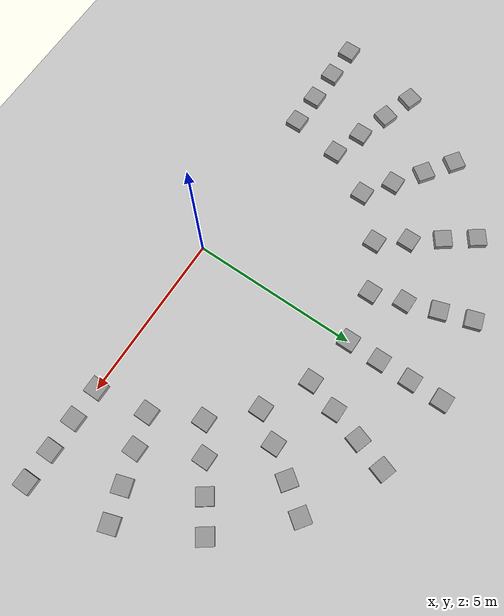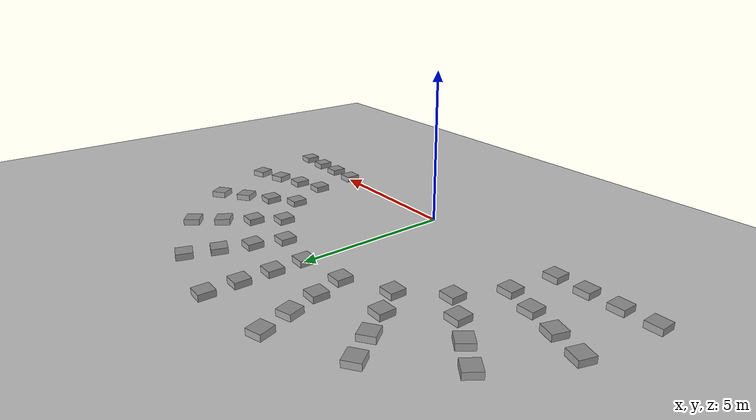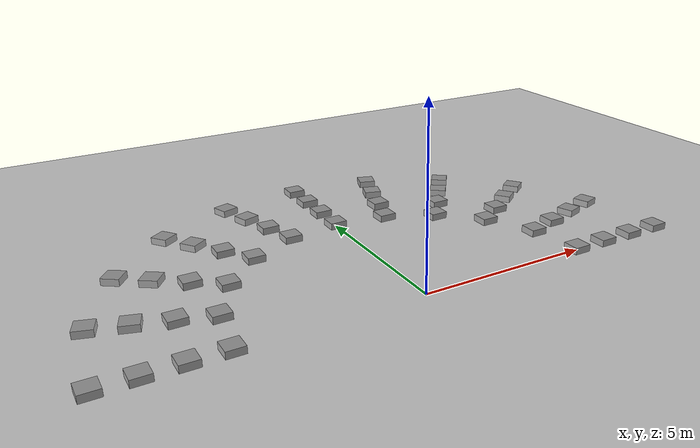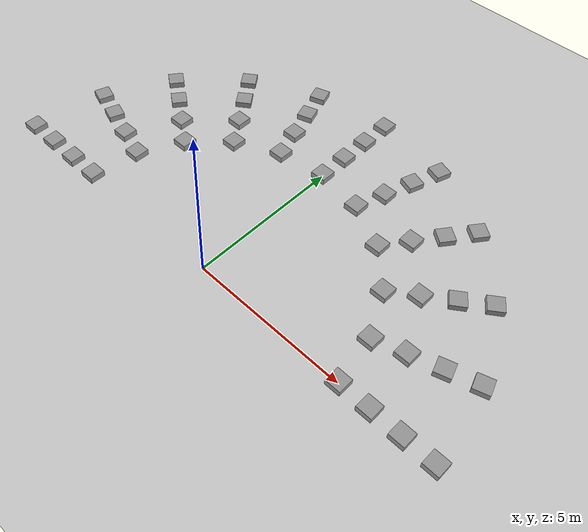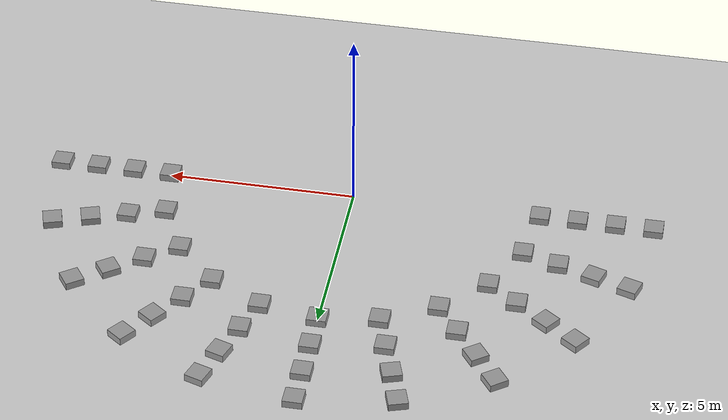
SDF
<sdf version="1.6">
 <world name="default">
  <model name="ground_plane">
   <static>1</static>
   <link name="link">
    <collision name="collision">
     <geometry><plane><normal>0 0 1</normal><size>100 100</size></plane></geometry>
     <surface><friction><ode><mu>100</mu><mu2>50</mu2></ode></friction></surface>
    </collision>
    <visual name="visual">
     <cast_shadows>0</cast_shadows>
     <geometry><plane><normal>0 0 1</normal><size>100 100</size></plane></geometry>
     <material>
      <script><uri>file://media/materials/scripts/gazebo.material</uri><name>Gazebo/Grey</name></script>
     </material>
    </visual>
   </link>
  </model>
  <model name="box_model0">
   <pose>5 0 0.1 0 -0 0</pose>
   <link name="link_1">
    <inertial>
     <mass>1</mass>
     <inertia>
      <ixx>0.0241667</ixx>
      <ixy>0</ixy>
      <ixz>0</ixz>
      <iyy>0.0241667</iyy>
      <iyz>0</iyz>
      <izz>0.0416667</izz>
     </inertia>
    </inertial>
    <collision name="collision">
     <geometry><box><size>0.5 0.5 0.2</size></box></geometry>
     <surface>
      <friction><ode><mu>100</mu><mu2>0</mu2><fdir1>-0 1 0</fdir1></ode></friction>
      <contact>
       <bullet>
        <split_impulse>1</split_impulse>
        <split_impulse_penetration_threshold>-0.01</split_impulse_penetration_threshold>
       </bullet>
      </contact>
     </surface>
    </collision>
    <visual name="visual">
     <geometry><box><size>0.5 0.5 0.2</size></box></geometry>
     <material>
      <script><name>Gazebo/Grey</name><uri>file://media/materials/scripts/gazebo.material</uri></script>
     </material>
    </visual>
   </link>
  </model>
  <model name="box_model1">
   <pose>4.75528 1.54509 0.1 0 -0 0</pose>
   <link name="link_1">
    <inertial>
     <mass>1</mass>
     <inertia>
      <ixx>0.0241667</ixx>
      <ixy>0</ixy>
      <ixz>0</ixz>
      <iyy>0.0241667</iyy>
      <iyz>0</iyz>
      <izz>0.0416667</izz>
     </inertia>
    </inertial>
    <collision name="collision">
     <geometry><box><size>0.5 0.5 0.2</size></box></geometry>
     <surface>
      <friction><ode><mu>100</mu><mu2>0</mu2><fdir1>-0.309017 0.951057 0</fdir1></ode></friction>
      <contact>
       <bullet>
        <split_impulse>1</split_impulse>
        <split_impulse_penetration_threshold>-0.01</split_impulse_penetration_threshold>
       </bullet>
      </contact>
     </surface>
    </collision>
    <visual name="visual">
     <geometry><box><size>0.5 0.5 0.2</size></box></geometry>
     <material>
      <script><name>Gazebo/Grey</name><uri>file://media/materials/scripts/gazebo.material</uri></script>
     </material>
    </visual>
   </link>
  </model>
  <model name="box_model2">
   <pose>4.04509 2.93893 0.1 0 -0 0</pose>
   <link name="link_1">
    <inertial>
     <mass>1</mass>
     <inertia>
      <ixx>0.0241667</ixx>
      <ixy>0</ixy>
      <ixz>0</ixz>
      <iyy>0.0241667</iyy>
      <iyz>0</iyz>
      <izz>0.0416667</izz>
     </inertia>
    </inertial>
    <collision name="collision">
     <geometry><box><size>0.5 0.5 0.2</size></box></geometry>
     <surface>
      <friction><ode><mu>100</mu><mu2>0</mu2><fdir1>-0.587785 0.809017 0</fdir1></ode></friction>
      <contact>
       <bullet>
        <split_impulse>1</split_impulse>
        <split_impulse_penetration_threshold>-0.01</split_impulse_penetration_threshold>
       </bullet>
      </contact>
     </surface>
    </collision>
    <visual name="visual">
     <geometry><box><size>0.5 0.5 0.2</size></box></geometry>
     <material>
      <script><name>Gazebo/Grey</name><uri>file://media/materials/scripts/gazebo.material</uri></script>
     </material>
    </visual>
   </link>
  </model>
  <model name="box_model3">
   <pose>2.93893 4.04509 0.1 0 -0 0</pose>
   <link name="link_1">
    <inertial>
     <mass>1</mass>
     <inertia>
      <ixx>0.0241667</ixx>
      <ixy>0</ixy>
      <ixz>0</ixz>
      <iyy>0.0241667</iyy>
      <iyz>0</iyz>
      <izz>0.0416667</izz>
     </inertia>
    </inertial>
    <collision name="collision">
     <geometry><box><size>0.5 0.5 0.2</size></box></geometry>
     <surface>
      <friction><ode><mu>100</mu><mu2>0</mu2><fdir1>-0.809017 0.587785 0</fdir1></ode></friction>
      <contact>
       <bullet>
        <split_impulse>1</split_impulse>
        <split_impulse_penetration_threshold>-0.01</split_impulse_penetration_threshold>
       </bullet>
      </contact>
     </surface>
    </collision>
    <visual name="visual">
     <geometry><box><size>0.5 0.5 0.2</size></box></geometry>
     <material>
      <script><name>Gazebo/Grey</name><uri>file://media/materials/scripts/gazebo.material</uri></script>
     </material>
    </visual>
   </link>
  </model>
  <model name="box_model4">
   <pose>1.54509 4.75528 0.1 0 -0 0</pose>
   <link name="link_1">
    <inertial>
     <mass>1</mass>
     <inertia>
      <ixx>0.0241667</ixx>
      <ixy>0</ixy>
      <ixz>0</ixz>
      <iyy>0.0241667</iyy>
      <iyz>0</iyz>
      <izz>0.0416667</izz>
     </inertia>
    </inertial>
    <collision name="collision">
     <geometry><box><size>0.5 0.5 0.2</size></box></geometry>
     <surface>
      <friction><ode><mu>100</mu><mu2>0</mu2><fdir1>-0.951057 0.309017 0</fdir1></ode></friction>
      <contact>
       <bullet>
        <split_impulse>1</split_impulse>
        <split_impulse_penetration_threshold>-0.01</split_impulse_penetration_threshold>
       </bullet>
      </contact>
     </surface>
    </collision>
    <visual name="visual">
     <geometry><box><size>0.5 0.5 0.2</size></box></geometry>
     <material>
      <script><name>Gazebo/Grey</name><uri>file://media/materials/scripts/gazebo.material</uri></script>
     </material>
    </visual>
   </link>
  </model>
  <model name="box_model5">
   <pose>0 5 0.1 0 -0 0</pose>
   <link name="link_1">
    <inertial>
     <mass>1</mass>
     <inertia>
      <ixx>0.0241667</ixx>
      <ixy>0</ixy>
      <ixz>0</ixz>
      <iyy>0.0241667</iyy>
      <iyz>0</iyz>
      <izz>0.0416667</izz>
     </inertia>
    </inertial>
    <collision name="collision">
     <geometry><box><size>0.5 0.5 0.2</size></box></geometry>
     <surface>
      <friction><ode><mu>100</mu><mu2>0</mu2><fdir1>-1 0 0</fdir1></ode></friction>
      <contact>
       <bullet>
        <split_impulse>1</split_impulse>
        <split_impulse_penetration_threshold>-0.01</split_impulse_penetration_threshold>
       </bullet>
      </contact>
     </surface>
    </collision>
    <visual name="visual">
     <geometry><box><size>0.5 0.5 0.2</size></box></geometry>
     <material>
      <script><name>Gazebo/Grey</name><uri>file://media/materials/scripts/gazebo.material</uri></script>
     </material>
    </visual>
   </link>
  </model>
  <model name="box_model6">
   <pose>-1.54509 4.75528 0.1 0 -0 0</pose>
   <link name="link_1">
    <inertial>
     <mass>1</mass>
     <inertia>
      <ixx>0.0241667</ixx>
      <ixy>0</ixy>
      <ixz>0</ixz>
      <iyy>0.0241667</iyy>
      <iyz>0</iyz>
      <izz>0.0416667</izz>
     </inertia>
    </inertial>
    <collision name="collision">
     <geometry><box><size>0.5 0.5 0.2</size></box></geometry>
     <surface>
      <friction><ode><mu>100</mu><mu2>0</mu2><fdir1>-0.951057 -0.309017 0</fdir1></ode></friction>
      <contact>
       <bullet>
        <split_impulse>1</split_impulse>
        <split_impulse_penetration_threshold>-0.01</split_impulse_penetration_threshold>
       </bullet>
      </contact>
     </surface>
    </collision>
    <visual name="visual">
     <geometry><box><size>0.5 0.5 0.2</size></box></geometry>
     <material>
      <script><name>Gazebo/Grey</name><uri>file://media/materials/scripts/gazebo.material</uri></script>
     </material>
    </visual>
   </link>
  </model>
  <model name="box_model7">
   <pose>-2.93893 4.04509 0.1 0 -0 0</pose>
   <link name="link_1">
    <inertial>
     <mass>1</mass>
     <inertia>
      <ixx>0.0241667</ixx>
      <ixy>0</ixy>
      <ixz>0</ixz>
      <iyy>0.0241667</iyy>
      <iyz>0</iyz>
      <izz>0.0416667</izz>
     </inertia>
    </inertial>
    <collision name="collision">
     <geometry><box><size>0.5 0.5 0.2</size></box></geometry>
     <surface>
      <friction><ode><mu>100</mu><mu2>0</mu2><fdir1>-0.809017 -0.587785 0</fdir1></ode></friction>
      <contact>
       <bullet>
        <split_impulse>1</split_impulse>
        <split_impulse_penetration_threshold>-0.01</split_impulse_penetration_threshold>
       </bullet>
      </contact>
     </surface>
    </collision>
    <visual name="visual">
     <geometry><box><size>0.5 0.5 0.2</size></box></geometry>
     <material>
      <script><name>Gazebo/Grey</name><uri>file://media/materials/scripts/gazebo.material</uri></script>
     </material>
    </visual>
   </link>
  </model>
  <model name="box_model8">
   <pose>-4.04509 2.93893 0.1 0 -0 0</pose>
   <link name="link_1">
    <inertial>
     <mass>1</mass>
     <inertia>
      <ixx>0.0241667</ixx>
      <ixy>0</ixy>
      <ixz>0</ixz>
      <iyy>0.0241667</iyy>
      <iyz>0</iyz>
      <izz>0.0416667</izz>
     </inertia>
    </inertial>
    <collision name="collision">
     <geometry><box><size>0.5 0.5 0.2</size></box></geometry>
     <surface>
      <friction><ode><mu>100</mu><mu2>0</mu2><fdir1>-0.587785 -0.809017 0</fdir1></ode></friction>
      <contact>
       <bullet>
        <split_impulse>1</split_impulse>
        <split_impulse_penetration_threshold>-0.01</split_impulse_penetration_threshold>
       </bullet>
      </contact>
     </surface>
    </collision>
    <visual name="visual">
     <geometry><box><size>0.5 0.5 0.2</size></box></geometry>
     <material>
      <script><name>Gazebo/Grey</name><uri>file://media/materials/scripts/gazebo.material</uri></script>
     </material>
    </visual>
   </link>
  </model>
  <model name="box_model9">
   <pose>-4.75528 1.54509 0.1 0 -0 0</pose>
   <link name="link_1">
    <inertial>
     <mass>1</mass>
     <inertia>
      <ixx>0.0241667</ixx>
      <ixy>0</ixy>
      <ixz>0</ixz>
      <iyy>0.0241667</iyy>
      <iyz>0</iyz>
      <izz>0.0416667</izz>
     </inertia>
    </inertial>
    <collision name="collision">
     <geometry><box><size>0.5 0.5 0.2</size></box></geometry>
     <surface>
      <friction><ode><mu>100</mu><mu2>0</mu2><fdir1>-0.309017 -0.951057 0</fdir1></ode></friction>
      <contact>
       <bullet>
        <split_impulse>1</split_impulse>
        <split_impulse_penetration_threshold>-0.01</split_impulse_penetration_threshold>
       </bullet>
      </contact>
     </surface>
    </collision>
    <visual name="visual">
     <geometry><box><size>0.5 0.5 0.2</size></box></geometry>
     <material>
      <script><name>Gazebo/Grey</name><uri>file://media/materials/scripts/gazebo.material</uri></script>
     </material>
    </visual>
   </link>
  </model>
  <model name="box_model10">
   <pose>-5 0 0.1 0 -0 0</pose>
   <link name="link_1">
    <inertial>
     <mass>1</mass>
     <inertia>
      <ixx>0.0241667</ixx>
      <ixy>0</ixy>
      <ixz>0</ixz>
      <iyy>0.0241667</iyy>
      <iyz>0</iyz>
      <izz>0.0416667</izz>
     </inertia>
    </inertial>
    <collision name="collision">
     <geometry><box><size>0.5 0.5 0.2</size></box></geometry>
     <surface>
      <friction><ode><mu>100</mu><mu2>0</mu2><fdir1>-0 -1 0</fdir1></ode></friction>
      <contact>
       <bullet>
        <split_impulse>1</split_impulse>
        <split_impulse_penetration_threshold>-0.01</split_impulse_penetration_threshold>
       </bullet>
      </contact>
     </surface>
    </collision>
    <visual name="visual">
     <geometry><box><size>0.5 0.5 0.2</size></box></geometry>
     <material>
      <script><name>Gazebo/Grey</name><uri>file://media/materials/scripts/gazebo.material</uri></script>
     </material>
    </visual>
   </link>
  </model>
  <model name="box_model11">
   <pose>6 0 0.1 0 -0 0</pose>
   <link name="link_1">
    <inertial>
     <mass>1</mass>
     <inertia>
      <ixx>0.0241667</ixx>
      <ixy>0</ixy>
      <ixz>0</ixz>
      <iyy>0.0241667</iyy>
      <iyz>0</iyz>
      <izz>0.0416667</izz>
     </inertia>
    </inertial>
    <collision name="collision">
     <geometry><box><size>0.5 0.5 0.2</size></box></geometry>
     <surface>
      <friction><ode><mu>100</mu><mu2>0</mu2><fdir1>0 1 0</fdir1></ode></friction>
      <contact>
       <bullet>
        <split_impulse>1</split_impulse>
        <split_impulse_penetration_threshold>-0.01</split_impulse_penetration_threshold>
       </bullet>
      </contact>
     </surface>
    </collision>
    <visual name="visual">
     <geometry><box><size>0.5 0.5 0.2</size></box></geometry>
     <material>
      <script><name>Gazebo/Grey</name><uri>file://media/materials/scripts/gazebo.material</uri></script>
     </material>
    </visual>
   </link>
  </model>
  <model name="box_model12">
   <pose>5.70634 1.8541 0.1 0 -0 0</pose>
   <link name="link_1">
    <inertial>
     <mass>1</mass>
     <inertia>
      <ixx>0.0241667</ixx>
      <ixy>0</ixy>
      <ixz>0</ixz>
      <iyy>0.0241667</iyy>
      <iyz>0</iyz>
      <izz>0.0416667</izz>
     </inertia>
    </inertial>
    <collision name="collision">
     <geometry><box><size>0.5 0.5 0.2</size></box></geometry>
     <pose>0 0 0 0 -0 0.314159</pose>
     <surface>
      <friction><ode><mu>100</mu><mu2>0</mu2><fdir1>0 1 0</fdir1></ode></friction>
      <contact>
       <bullet>
        <split_impulse>1</split_impulse>
        <split_impulse_penetration_threshold>-0.01</split_impulse_penetration_threshold>
       </bullet>
      </contact>
     </surface>
    </collision>
    <visual name="visual">
     <geometry><box><size>0.5 0.5 0.2</size></box></geometry>
     <material>
      <script><name>Gazebo/Grey</name><uri>file://media/materials/scripts/gazebo.material</uri></script>
     </material>
    </visual>
   </link>
  </model>
  <model name="box_model13">
   <pose>4.8541 3.52671 0.1 0 -0 0</pose>
   <link name="link_1">
    <inertial>
     <mass>1</mass>
     <inertia>
      <ixx>0.0241667</ixx>
      <ixy>0</ixy>
      <ixz>0</ixz>
      <iyy>0.0241667</iyy>
      <iyz>0</iyz>
      <izz>0.0416667</izz>
     </inertia>
    </inertial>
    <collision name="collision">
     <geometry><box><size>0.5 0.5 0.2</size></box></geometry>
     <pose>0 0 0 0 -0 0.628319</pose>
     <surface>
      <friction><ode><mu>100</mu><mu2>0</mu2><fdir1>0 1 0</fdir1></ode></friction>
      <contact>
       <bullet>
        <split_impulse>1</split_impulse>
        <split_impulse_penetration_threshold>-0.01</split_impulse_penetration_threshold>
       </bullet>
      </contact>
     </surface>
    </collision>
    <visual name="visual">
     <geometry><box><size>0.5 0.5 0.2</size></box></geometry>
     <material>
      <script><name>Gazebo/Grey</name><uri>file://media/materials/scripts/gazebo.material</uri></script>
     </material>
    </visual>
   </link>
  </model>
  <model name="box_model14">
   <pose>3.52671 4.8541 0.1 0 -0 0</pose>
   <link name="link_1">
    <inertial>
     <mass>1</mass>
     <inertia>
      <ixx>0.0241667</ixx>
      <ixy>0</ixy>
      <ixz>0</ixz>
      <iyy>0.0241667</iyy>
      <iyz>0</iyz>
      <izz>0.0416667</izz>
     </inertia>
    </inertial>
    <collision name="collision">
     <geometry><box><size>0.5 0.5 0.2</size></box></geometry>
     <pose>0 0 0 0 -0 0.942478</pose>
     <surface>
      <friction><ode><mu>100</mu><mu2>0</mu2><fdir1>0 1 0</fdir1></ode></friction>
      <contact>
       <bullet>
        <split_impulse>1</split_impulse>
        <split_impulse_penetration_threshold>-0.01</split_impulse_penetration_threshold>
       </bullet>
      </contact>
     </surface>
    </collision>
    <visual name="visual">
     <geometry><box><size>0.5 0.5 0.2</size></box></geometry>
     <material>
      <script><name>Gazebo/Grey</name><uri>file://media/materials/scripts/gazebo.material</uri></script>
     </material>
    </visual>
   </link>
  </model>
  <model name="box_model15">
   <pose>1.8541 5.70634 0.1 0 -0 0</pose>
   <link name="link_1">
    <inertial>
     <mass>1</mass>
     <inertia>
      <ixx>0.0241667</ixx>
      <ixy>0</ixy>
      <ixz>0</ixz>
      <iyy>0.0241667</iyy>
      <iyz>0</iyz>
      <izz>0.0416667</izz>
     </inertia>
    </inertial>
    <collision name="collision">
     <geometry><box><size>0.5 0.5 0.2</size></box></geometry>
     <pose>0 0 0 0 -0 1.25664</pose>
     <surface>
      <friction><ode><mu>100</mu><mu2>0</mu2><fdir1>0 1 0</fdir1></ode></friction>
      <contact>
       <bullet>
        <split_impulse>1</split_impulse>
        <split_impulse_penetration_threshold>-0.01</split_impulse_penetration_threshold>
       </bullet>
      </contact>
     </surface>
    </collision>
    <visual name="visual">
     <geometry><box><size>0.5 0.5 0.2</size></box></geometry>
     <material>
      <script><name>Gazebo/Grey</name><uri>file://media/materials/scripts/gazebo.material</uri></script>
     </material>
    </visual>
   </link>
  </model>
  <model name="box_model16">
   <pose>0 6 0.1 0 -0 0</pose>
   <link name="link_1">
    <inertial>
     <mass>1</mass>
     <inertia>
      <ixx>0.0241667</ixx>
      <ixy>0</ixy>
      <ixz>0</ixz>
      <iyy>0.0241667</iyy>
      <iyz>0</iyz>
      <izz>0.0416667</izz>
     </inertia>
    </inertial>
    <collision name="collision">
     <geometry><box><size>0.5 0.5 0.2</size></box></geometry>
     <pose>0 0 0 0 -0 1.5708</pose>
     <surface>
      <friction><ode><mu>100</mu><mu2>0</mu2><fdir1>0 1 0</fdir1></ode></friction>
      <contact>
       <bullet>
        <split_impulse>1</split_impulse>
        <split_impulse_penetration_threshold>-0.01</split_impulse_penetration_threshold>
       </bullet>
      </contact>
     </surface>
    </collision>
    <visual name="visual">
     <geometry><box><size>0.5 0.5 0.2</size></box></geometry>
     <material>
      <script><name>Gazebo/Grey</name><uri>file://media/materials/scripts/gazebo.material</uri></script>
     </material>
    </visual>
   </link>
  </model>
  <model name="box_model17">
   <pose>-1.8541 5.70634 0.1 0 -0 0</pose>
   <link name="link_1">
    <inertial>
     <mass>1</mass>
     <inertia>
      <ixx>0.0241667</ixx>
      <ixy>0</ixy>
      <ixz>0</ixz>
      <iyy>0.0241667</iyy>
      <iyz>0</iyz>
      <izz>0.0416667</izz>
     </inertia>
    </inertial>
    <collision name="collision">
     <geometry><box><size>0.5 0.5 0.2</size></box></geometry>
     <pose>0 0 0 0 -0 1.88496</pose>
     <surface>
      <friction><ode><mu>100</mu><mu2>0</mu2><fdir1>0 1 0</fdir1></ode></friction>
      <contact>
       <bullet>
        <split_impulse>1</split_impulse>
        <split_impulse_penetration_threshold>-0.01</split_impulse_penetration_threshold>
       </bullet>
      </contact>
     </surface>
    </collision>
    <visual name="visual">
     <geometry><box><size>0.5 0.5 0.2</size></box></geometry>
     <material>
      <script><name>Gazebo/Grey</name><uri>file://media/materials/scripts/gazebo.material</uri></script>
     </material>
    </visual>
   </link>
  </model>
  <model name="box_model18">
   <pose>-3.52671 4.8541 0.1 0 -0 0</pose>
   <link name="link_1">
    <inertial>
     <mass>1</mass>
     <inertia>
      <ixx>0.0241667</ixx>
      <ixy>0</ixy>
      <ixz>0</ixz>
      <iyy>0.0241667</iyy>
      <iyz>0</iyz>
      <izz>0.0416667</izz>
     </inertia>
    </inertial>
    <collision name="collision">
     <geometry><box><size>0.5 0.5 0.2</size></box></geometry>
     <pose>0 0 0 0 -0 2.19911</pose>
     <surface>
      <friction><ode><mu>100</mu><mu2>0</mu2><fdir1>0 1 0</fdir1></ode></friction>
      <contact>
       <bullet>
        <split_impulse>1</split_impulse>
        <split_impulse_penetration_threshold>-0.01</split_impulse_penetration_threshold>
       </bullet>
      </contact>
     </surface>
    </collision>
    <visual name="visual">
     <geometry><box><size>0.5 0.5 0.2</size></box></geometry>
     <material>
      <script><name>Gazebo/Grey</name><uri>file://media/materials/scripts/gazebo.material</uri></script>
     </material>
    </visual>
   </link>
  </model>
  <model name="box_model19">
   <pose>-4.8541 3.52671 0.1 0 -0 0</pose>
   <link name="link_1">
    <inertial>
     <mass>1</mass>
     <inertia>
      <ixx>0.0241667</ixx>
      <ixy>0</ixy>
      <ixz>0</ixz>
      <iyy>0.0241667</iyy>
      <iyz>0</iyz>
      <izz>0.0416667</izz>
     </inertia>
    </inertial>
    <collision name="collision">
     <geometry><box><size>0.5 0.5 0.2</size></box></geometry>
     <pose>0 0 0 0 -0 2.51327</pose>
     <surface>
      <friction><ode><mu>100</mu><mu2>0</mu2><fdir1>0 1 0</fdir1></ode></friction>
      <contact>
       <bullet>
        <split_impulse>1</split_impulse>
        <split_impulse_penetration_threshold>-0.01</split_impulse_penetration_threshold>
       </bullet>
      </contact>
     </surface>
    </collision>
    <visual name="visual">
     <geometry><box><size>0.5 0.5 0.2</size></box></geometry>
     <material>
      <script><name>Gazebo/Grey</name><uri>file://media/materials/scripts/gazebo.material</uri></script>
     </material>
    </visual>
   </link>
  </model>
  <model name="box_model20">
   <pose>-5.70634 1.8541 0.1 0 -0 0</pose>
   <link name="link_1">
    <inertial>
     <mass>1</mass>
     <inertia>
      <ixx>0.0241667</ixx>
      <ixy>0</ixy>
      <ixz>0</ixz>
      <iyy>0.0241667</iyy>
      <iyz>0</iyz>
      <izz>0.0416667</izz>
     </inertia>
    </inertial>
    <collision name="collision">
     <geometry><box><size>0.5 0.5 0.2</size></box></geometry>
     <pose>0 0 0 0 -0 2.82743</pose>
     <surface>
      <friction><ode><mu>100</mu><mu2>0</mu2><fdir1>0 1 0</fdir1></ode></friction>
      <contact>
       <bullet>
        <split_impulse>1</split_impulse>
        <split_impulse_penetration_threshold>-0.01</split_impulse_penetration_threshold>
       </bullet>
      </contact>
     </surface>
    </collision>
    <visual name="visual">
     <geometry><box><size>0.5 0.5 0.2</size></box></geometry>
     <material>
      <script><name>Gazebo/Grey</name><uri>file://media/materials/scripts/gazebo.material</uri></script>
     </material>
    </visual>
   </link>
  </model>
  <model name="box_model21">
   <pose>-6 0 0.1 0 -0 0</pose>
   <link name="link_1">
    <inertial>
     <mass>1</mass>
     <inertia>
      <ixx>0.0241667</ixx>
      <ixy>0</ixy>
      <ixz>0</ixz>
      <iyy>0.0241667</iyy>
      <iyz>0</iyz>
      <izz>0.0416667</izz>
     </inertia>
    </inertial>
    <collision name="collision">
     <geometry><box><size>0.5 0.5 0.2</size></box></geometry>
     <pose>0 0 0 0 -0 3.14159</pose>
     <surface>
      <friction><ode><mu>100</mu><mu2>0</mu2><fdir1>0 1 0</fdir1></ode></friction>
      <contact>
       <bullet>
        <split_impulse>1</split_impulse>
        <split_impulse_penetration_threshold>-0.01</split_impulse_penetration_threshold>
       </bullet>
      </contact>
     </surface>
    </collision>
    <visual name="visual">
     <geometry><box><size>0.5 0.5 0.2</size></box></geometry>
     <material>
      <script><name>Gazebo/Grey</name><uri>file://media/materials/scripts/gazebo.material</uri></script>
     </material>
    </visual>
   </link>
  </model>
  <model name="box_model22">
   <pose>7 0 0.1 0 -0 0</pose>
   <link name="link_1">
    <inertial>
     <mass>1</mass>
     <inertia>
      <ixx>0.0241667</ixx>
      <ixy>0</ixy>
      <ixz>0</ixz>
      <iyy>0.0241667</iyy>
      <iyz>0</iyz>
      <izz>0.0416667</izz>
     </inertia>
    </inertial>
    <collision name="collision">
     <geometry><box><size>0.5 0.5 0.2</size></box></geometry>
     <surface>
      <friction><ode><mu>100</mu><mu2>0</mu2><fdir1>0 1 0</fdir1></ode></friction>
      <contact>
       <bullet>
        <split_impulse>1</split_impulse>
        <split_impulse_penetration_threshold>-0.01</split_impulse_penetration_threshold>
       </bullet>
      </contact>
     </surface>
    </collision>
    <visual name="visual">
     <geometry><box><size>0.5 0.5 0.2</size></box></geometry>
     <material>
      <script><name>Gazebo/Grey</name><uri>file://media/materials/scripts/gazebo.material</uri></script>
     </material>
    </visual>
   </link>
  </model>
  <model name="box_model23">
   <pose>6.6574 2.16312 0.1 0 -0 0</pose>
   <link name="link_1">
    <pose>0 0 0 0 -0 0.314159</pose>
    <inertial>
     <mass>1</mass>
     <inertia>
      <ixx>0.0241667</ixx>
      <ixy>0</ixy>
      <ixz>0</ixz>
      <iyy>0.0241667</iyy>
      <iyz>0</iyz>
      <izz>0.0416667</izz>
     </inertia>
    </inertial>
    <collision name="collision">
     <geometry><box><size>0.5 0.5 0.2</size></box></geometry>
     <surface>
      <friction><ode><mu>100</mu><mu2>0</mu2><fdir1>0 1 0</fdir1></ode></friction>
      <contact>
       <bullet>
        <split_impulse>1</split_impulse>
        <split_impulse_penetration_threshold>-0.01</split_impulse_penetration_threshold>
       </bullet>
      </contact>
     </surface>
    </collision>
    <visual name="visual">
     <geometry><box><size>0.5 0.5 0.2</size></box></geometry>
     <material>
      <script><name>Gazebo/Grey</name><uri>file://media/materials/scripts/gazebo.material</uri></script>
     </material>
    </visual>
   </link>
  </model>
  <model name="box_model24">
   <pose>5.66312 4.1145 0.1 0 -0 0</pose>
   <link name="link_1">
    <pose>0 0 0 0 -0 0.628319</pose>
    <inertial>
     <mass>1</mass>
     <inertia>
      <ixx>0.0241667</ixx>
      <ixy>0</ixy>
      <ixz>0</ixz>
      <iyy>0.0241667</iyy>
      <iyz>0</iyz>
      <izz>0.0416667</izz>
     </inertia>
    </inertial>
    <collision name="collision">
     <geometry><box><size>0.5 0.5 0.2</size></box></geometry>
     <surface>
      <friction><ode><mu>100</mu><mu2>0</mu2><fdir1>0 1 0</fdir1></ode></friction>
      <contact>
       <bullet>
        <split_impulse>1</split_impulse>
        <split_impulse_penetration_threshold>-0.01</split_impulse_penetration_threshold>
       </bullet>
      </contact>
     </surface>
    </collision>
    <visual name="visual">
     <geometry><box><size>0.5 0.5 0.2</size></box></geometry>
     <material>
      <script><name>Gazebo/Grey</name><uri>file://media/materials/scripts/gazebo.material</uri></script>
     </material>
    </visual>
   </link>
  </model>
  <model name="box_model25">
   <pose>4.1145 5.66312 0.1 0 -0 0</pose>
   <link name="link_1">
    <pose>0 0 0 0 -0 0.942478</pose>
    <inertial>
     <mass>1</mass>
     <inertia>
      <ixx>0.0241667</ixx>
      <ixy>0</ixy>
      <ixz>0</ixz>
      <iyy>0.0241667</iyy>
      <iyz>0</iyz>
      <izz>0.0416667</izz>
     </inertia>
    </inertial>
    <collision name="collision">
     <geometry><box><size>0.5 0.5 0.2</size></box></geometry>
     <surface>
      <friction><ode><mu>100</mu><mu2>0</mu2><fdir1>0 1 0</fdir1></ode></friction>
      <contact>
       <bullet>
        <split_impulse>1</split_impulse>
        <split_impulse_penetration_threshold>-0.01</split_impulse_penetration_threshold>
       </bullet>
      </contact>
     </surface>
    </collision>
    <visual name="visual">
     <geometry><box><size>0.5 0.5 0.2</size></box></geometry>
     <material>
      <script><name>Gazebo/Grey</name><uri>file://media/materials/scripts/gazebo.material</uri></script>
     </material>
    </visual>
   </link>
  </model>
  <model name="box_model26">
   <pose>2.16312 6.6574 0.1 0 -0 0</pose>
   <link name="link_1">
    <pose>0 0 0 0 -0 1.25664</pose>
    <inertial>
     <mass>1</mass>
     <inertia>
      <ixx>0.0241667</ixx>
      <ixy>0</ixy>
      <ixz>0</ixz>
      <iyy>0.0241667</iyy>
      <iyz>0</iyz>
      <izz>0.0416667</izz>
     </inertia>
    </inertial>
    <collision name="collision">
     <geometry><box><size>0.5 0.5 0.2</size></box></geometry>
     <surface>
      <friction><ode><mu>100</mu><mu2>0</mu2><fdir1>0 1 0</fdir1></ode></friction>
      <contact>
       <bullet>
        <split_impulse>1</split_impulse>
        <split_impulse_penetration_threshold>-0.01</split_impulse_penetration_threshold>
       </bullet>
      </contact>
     </surface>
    </collision>
    <visual name="visual">
     <geometry><box><size>0.5 0.5 0.2</size></box></geometry>
     <material>
      <script><name>Gazebo/Grey</name><uri>file://media/materials/scripts/gazebo.material</uri></script>
     </material>
    </visual>
   </link>
  </model>
  <model name="box_model27">
   <pose>0 7 0.1 0 -0 0</pose>
   <link name="link_1">
    <pose>0 0 0 0 -0 1.5708</pose>
    <inertial>
     <mass>1</mass>
     <inertia>
      <ixx>0.0241667</ixx>
      <ixy>0</ixy>
      <ixz>0</ixz>
      <iyy>0.0241667</iyy>
      <iyz>0</iyz>
      <izz>0.0416667</izz>
     </inertia>
    </inertial>
    <collision name="collision">
     <geometry><box><size>0.5 0.5 0.2</size></box></geometry>
     <surface>
      <friction><ode><mu>100</mu><mu2>0</mu2><fdir1>0 1 0</fdir1></ode></friction>
      <contact>
       <bullet>
        <split_impulse>1</split_impulse>
        <split_impulse_penetration_threshold>-0.01</split_impulse_penetration_threshold>
       </bullet>
      </contact>
     </surface>
    </collision>
    <visual name="visual">
     <geometry><box><size>0.5 0.5 0.2</size></box></geometry>
     <material>
      <script><name>Gazebo/Grey</name><uri>file://media/materials/scripts/gazebo.material</uri></script>
     </material>
    </visual>
   </link>
  </model>
  <model name="box_model28">
   <pose>-2.16312 6.6574 0.1 0 -0 0</pose>
   <link name="link_1">
    <pose>0 0 0 0 -0 1.88496</pose>
    <inertial>
     <mass>1</mass>
     <inertia>
      <ixx>0.0241667</ixx>
      <ixy>0</ixy>
      <ixz>0</ixz>
      <iyy>0.0241667</iyy>
      <iyz>0</iyz>
      <izz>0.0416667</izz>
     </inertia>
    </inertial>
    <collision name="collision">
     <geometry><box><size>0.5 0.5 0.2</size></box></geometry>
     <surface>
      <friction><ode><mu>100</mu><mu2>0</mu2><fdir1>0 1 0</fdir1></ode></friction>
      <contact>
       <bullet>
        <split_impulse>1</split_impulse>
        <split_impulse_penetration_threshold>-0.01</split_impulse_penetration_threshold>
       </bullet>
      </contact>
     </surface>
    </collision>
    <visual name="visual">
     <geometry><box><size>0.5 0.5 0.2</size></box></geometry>
     <material>
      <script><name>Gazebo/Grey</name><uri>file://media/materials/scripts/gazebo.material</uri></script>
     </material>
    </visual>
   </link>
  </model>
  <model name="box_model29">
   <pose>-4.1145 5.66312 0.1 0 -0 0</pose>
   <link name="link_1">
    <pose>0 0 0 0 -0 2.19911</pose>
    <inertial>
     <mass>1</mass>
     <inertia>
      <ixx>0.0241667</ixx>
      <ixy>0</ixy>
      <ixz>0</ixz>
      <iyy>0.0241667</iyy>
      <iyz>0</iyz>
      <izz>0.0416667</izz>
     </inertia>
    </inertial>
    <collision name="collision">
     <geometry><box><size>0.5 0.5 0.2</size></box></geometry>
     <surface>
      <friction><ode><mu>100</mu><mu2>0</mu2><fdir1>0 1 0</fdir1></ode></friction>
      <contact>
       <bullet>
        <split_impulse>1</split_impulse>
        <split_impulse_penetration_threshold>-0.01</split_impulse_penetration_threshold>
       </bullet>
      </contact>
     </surface>
    </collision>
    <visual name="visual">
     <geometry><box><size>0.5 0.5 0.2</size></box></geometry>
     <material>
      <script><name>Gazebo/Grey</name><uri>file://media/materials/scripts/gazebo.material</uri></script>
     </material>
    </visual>
   </link>
  </model>
  <model name="box_model30">
   <pose>-5.66312 4.1145 0.1 0 -0 0</pose>
   <link name="link_1">
    <pose>0 0 0 0 -0 2.51327</pose>
    <inertial>
     <mass>1</mass>
     <inertia>
      <ixx>0.0241667</ixx>
      <ixy>0</ixy>
      <ixz>0</ixz>
      <iyy>0.0241667</iyy>
      <iyz>0</iyz>
      <izz>0.0416667</izz>
     </inertia>
    </inertial>
    <collision name="collision">
     <geometry><box><size>0.5 0.5 0.2</size></box></geometry>
     <surface>
      <friction><ode><mu>100</mu><mu2>0</mu2><fdir1>0 1 0</fdir1></ode></friction>
      <contact>
       <bullet>
        <split_impulse>1</split_impulse>
        <split_impulse_penetration_threshold>-0.01</split_impulse_penetration_threshold>
       </bullet>
      </contact>
     </surface>
    </collision>
    <visual name="visual">
     <geometry><box><size>0.5 0.5 0.2</size></box></geometry>
     <material>
      <script><name>Gazebo/Grey</name><uri>file://media/materials/scripts/gazebo.material</uri></script>
     </material>
    </visual>
   </link>
  </model>
  <model name="box_model31">
   <pose>-6.6574 2.16312 0.1 0 -0 0</pose>
   <link name="link_1">
    <pose>0 0 0 0 -0 2.82743</pose>
    <inertial>
     <mass>1</mass>
     <inertia>
      <ixx>0.0241667</ixx>
      <ixy>0</ixy>
      <ixz>0</ixz>
      <iyy>0.0241667</iyy>
      <iyz>0</iyz>
      <izz>0.0416667</izz>
     </inertia>
    </inertial>
    <collision name="collision">
     <geometry><box><size>0.5 0.5 0.2</size></box></geometry>
     <surface>
      <friction><ode><mu>100</mu><mu2>0</mu2><fdir1>0 1 0</fdir1></ode></friction>
      <contact>
       <bullet>
        <split_impulse>1</split_impulse>
        <split_impulse_penetration_threshold>-0.01</split_impulse_penetration_threshold>
       </bullet>
      </contact>
     </surface>
    </collision>
    <visual name="visual">
     <geometry><box><size>0.5 0.5 0.2</size></box></geometry>
     <material>
      <script><name>Gazebo/Grey</name><uri>file://media/materials/scripts/gazebo.material</uri></script>
     </material>
    </visual>
   </link>
  </model>
  <model name="box_model32">
   <pose>-7 0 0.1 0 -0 0</pose>
   <link name="link_1">
    <pose>0 0 0 0 -0 3.14159</pose>
    <inertial>
     <mass>1</mass>
     <inertia>
      <ixx>0.0241667</ixx>
      <ixy>0</ixy>
      <ixz>0</ixz>
      <iyy>0.0241667</iyy>
      <iyz>0</iyz>
      <izz>0.0416667</izz>
     </inertia>
    </inertial>
    <collision name="collision">
     <geometry><box><size>0.5 0.5 0.2</size></box></geometry>
     <surface>
      <friction><ode><mu>100</mu><mu2>0</mu2><fdir1>0 1 0</fdir1></ode></friction>
      <contact>
       <bullet>
        <split_impulse>1</split_impulse>
        <split_impulse_penetration_threshold>-0.01</split_impulse_penetration_threshold>
       </bullet>
      </contact>
     </surface>
    </collision>
    <visual name="visual">
     <geometry><box><size>0.5 0.5 0.2</size></box></geometry>
     <material>
      <script><name>Gazebo/Grey</name><uri>file://media/materials/scripts/gazebo.material</uri></script>
     </material>
    </visual>
   </link>
  </model>
  <model name="box_model33">
   <pose>8 0 0.1 0 -0 0</pose>
   <link name="link_1">
    <inertial>
     <mass>1</mass>
     <inertia>
      <ixx>0.0241667</ixx>
      <ixy>0</ixy>
      <ixz>0</ixz>
      <iyy>0.0241667</iyy>
      <iyz>0</iyz>
      <izz>0.0416667</izz>
     </inertia>
    </inertial>
    <collision name="collision">
     <geometry><box><size>0.5 0.5 0.2</size></box></geometry>
     <surface>
      <friction><ode><mu>100</mu><mu2>0</mu2><fdir1>0 1 0</fdir1></ode></friction>
      <contact>
       <bullet>
        <split_impulse>1</split_impulse>
        <split_impulse_penetration_threshold>-0.01</split_impulse_penetration_threshold>
       </bullet>
      </contact>
     </surface>
    </collision>
    <visual name="visual">
     <geometry><box><size>0.5 0.5 0.2</size></box></geometry>
     <material>
      <script><name>Gazebo/Grey</name><uri>file://media/materials/scripts/gazebo.material</uri></script>
     </material>
    </visual>
   </link>
  </model>
  <model name="box_model34">
   <pose>7.60845 2.47214 0.1 0 -0 0.314159</pose>
   <link name="link_1">
    <inertial>
     <mass>1</mass>
     <inertia>
      <ixx>0.0241667</ixx>
      <ixy>0</ixy>
      <ixz>0</ixz>
      <iyy>0.0241667</iyy>
      <iyz>0</iyz>
      <izz>0.0416667</izz>
     </inertia>
    </inertial>
    <collision name="collision">
     <geometry><box><size>0.5 0.5 0.2</size></box></geometry>
     <surface>
      <friction><ode><mu>100</mu><mu2>0</mu2><fdir1>0 1 0</fdir1></ode></friction>
      <contact>
       <bullet>
        <split_impulse>1</split_impulse>
        <split_impulse_penetration_threshold>-0.01</split_impulse_penetration_threshold>
       </bullet>
      </contact>
     </surface>
    </collision>
    <visual name="visual">
     <geometry><box><size>0.5 0.5 0.2</size></box></geometry>
     <material>
      <script><name>Gazebo/Grey</name><uri>file://media/materials/scripts/gazebo.material</uri></script>
     </material>
    </visual>
   </link>
  </model>
  <model name="box_model35">
   <pose>6.47214 4.70228 0.1 0 -0 0.628319</pose>
   <link name="link_1">
    <inertial>
     <mass>1</mass>
     <inertia>
      <ixx>0.0241667</ixx>
      <ixy>0</ixy>
      <ixz>0</ixz>
      <iyy>0.0241667</iyy>
      <iyz>0</iyz>
      <izz>0.0416667</izz>
     </inertia>
    </inertial>
    <collision name="collision">
     <geometry><box><size>0.5 0.5 0.2</size></box></geometry>
     <surface>
      <friction><ode><mu>100</mu><mu2>0</mu2><fdir1>0 1 0</fdir1></ode></friction>
      <contact>
       <bullet>
        <split_impulse>1</split_impulse>
        <split_impulse_penetration_threshold>-0.01</split_impulse_penetration_threshold>
       </bullet>
      </contact>
     </surface>
    </collision>
    <visual name="visual">
     <geometry><box><size>0.5 0.5 0.2</size></box></geometry>
     <material>
      <script><name>Gazebo/Grey</name><uri>file://media/materials/scripts/gazebo.material</uri></script>
     </material>
    </visual>
   </link>
  </model>
  <model name="box_model36">
   <pose>4.70228 6.47214 0.1 0 -0 0.942478</pose>
   <link name="link_1">
    <inertial>
     <mass>1</mass>
     <inertia>
      <ixx>0.0241667</ixx>
      <ixy>0</ixy>
      <ixz>0</ixz>
      <iyy>0.0241667</iyy>
      <iyz>0</iyz>
      <izz>0.0416667</izz>
     </inertia>
    </inertial>
    <collision name="collision">
     <geometry><box><size>0.5 0.5 0.2</size></box></geometry>
     <surface>
      <friction><ode><mu>100</mu><mu2>0</mu2><fdir1>0 1 0</fdir1></ode></friction>
      <contact>
       <bullet>
        <split_impulse>1</split_impulse>
        <split_impulse_penetration_threshold>-0.01</split_impulse_penetration_threshold>
       </bullet>
      </contact>
     </surface>
    </collision>
    <visual name="visual">
     <geometry><box><size>0.5 0.5 0.2</size></box></geometry>
     <material>
      <script><name>Gazebo/Grey</name><uri>file://media/materials/scripts/gazebo.material</uri></script>
     </material>
    </visual>
   </link>
  </model>
  <model name="box_model37">
   <pose>2.47214 7.60845 0.1 0 -0 1.25664</pose>
   <link name="link_1">
    <inertial>
     <mass>1</mass>
     <inertia>
      <ixx>0.0241667</ixx>
      <ixy>0</ixy>
      <ixz>0</ixz>
      <iyy>0.0241667</iyy>
      <iyz>0</iyz>
      <izz>0.0416667</izz>
     </inertia>
    </inertial>
    <collision name="collision">
     <geometry><box><size>0.5 0.5 0.2</size></box></geometry>
     <surface>
      <friction><ode><mu>100</mu><mu2>0</mu2><fdir1>0 1 0</fdir1></ode></friction>
      <contact>
       <bullet>
        <split_impulse>1</split_impulse>
        <split_impulse_penetration_threshold>-0.01</split_impulse_penetration_threshold>
       </bullet>
      </contact>
     </surface>
    </collision>
    <visual name="visual">
     <geometry><box><size>0.5 0.5 0.2</size></box></geometry>
     <material>
      <script><name>Gazebo/Grey</name><uri>file://media/materials/scripts/gazebo.material</uri></script>
     </material>
    </visual>
   </link>
  </model>
  <model name="box_model38">
   <pose>0 8 0.1 0 -0 1.5708</pose>
   <link name="link_1">
    <inertial>
     <mass>1</mass>
     <inertia>
      <ixx>0.0241667</ixx>
      <ixy>0</ixy>
      <ixz>0</ixz>
      <iyy>0.0241667</iyy>
      <iyz>0</iyz>
      <izz>0.0416667</izz>
     </inertia>
    </inertial>
    <collision name="collision">
     <geometry><box><size>0.5 0.5 0.2</size></box></geometry>
     <surface>
      <friction><ode><mu>100</mu><mu2>0</mu2><fdir1>0 1 0</fdir1></ode></friction>
      <contact>
       <bullet>
        <split_impulse>1</split_impulse>
        <split_impulse_penetration_threshold>-0.01</split_impulse_penetration_threshold>
       </bullet>
      </contact>
     </surface>
    </collision>
    <visual name="visual">
     <geometry><box><size>0.5 0.5 0.2</size></box></geometry>
     <material>
      <script><name>Gazebo/Grey</name><uri>file://media/materials/scripts/gazebo.material</uri></script>
     </material>
    </visual>
   </link>
  </model>
  <model name="box_model39">
   <pose>-2.47214 7.60845 0.1 0 -0 1.88496</pose>
   <link name="link_1">
    <inertial>
     <mass>1</mass>
     <inertia>
      <ixx>0.0241667</ixx>
      <ixy>0</ixy>
      <ixz>0</ixz>
      <iyy>0.0241667</iyy>
      <iyz>0</iyz>
      <izz>0.0416667</izz>
     </inertia>
    </inertial>
    <collision name="collision">
     <geometry><box><size>0.5 0.5 0.2</size></box></geometry>
     <surface>
      <friction><ode><mu>100</mu><mu2>0</mu2><fdir1>0 1 0</fdir1></ode></friction>
      <contact>
       <bullet>
        <split_impulse>1</split_impulse>
        <split_impulse_penetration_threshold>-0.01</split_impulse_penetration_threshold>
       </bullet>
      </contact>
     </surface>
    </collision>
    <visual name="visual">
     <geometry><box><size>0.5 0.5 0.2</size></box></geometry>
     <material>
      <script><name>Gazebo/Grey</name><uri>file://media/materials/scripts/gazebo.material</uri></script>
     </material>
    </visual>
   </link>
  </model>
  <model name="box_model40">
   <pose>-4.70228 6.47214 0.1 0 -0 2.19911</pose>
   <link name="link_1">
    <inertial>
     <mass>1</mass>
     <inertia>
      <ixx>0.0241667</ixx>
      <ixy>0</ixy>
      <ixz>0</ixz>
      <iyy>0.0241667</iyy>
      <iyz>0</iyz>
      <izz>0.0416667</izz>
     </inertia>
    </inertial>
    <collision name="collision">
     <geometry><box><size>0.5 0.5 0.2</size></box></geometry>
     <surface>
      <friction><ode><mu>100</mu><mu2>0</mu2><fdir1>0 1 0</fdir1></ode></friction>
      <contact>
       <bullet>
        <split_impulse>1</split_impulse>
        <split_impulse_penetration_threshold>-0.01</split_impulse_penetration_threshold>
       </bullet>
      </contact>
     </surface>
    </collision>
    <visual name="visual">
     <geometry><box><size>0.5 0.5 0.2</size></box></geometry>
     <material>
      <script><name>Gazebo/Grey</name><uri>file://media/materials/scripts/gazebo.material</uri></script>
     </material>
    </visual>
   </link>
  </model>
  <model name="box_model41">
   <pose>-6.47214 4.70228 0.1 0 -0 2.51327</pose>
   <link name="link_1">
    <inertial>
     <mass>1</mass>
     <inertia>
      <ixx>0.0241667</ixx>
      <ixy>0</ixy>
      <ixz>0</ixz>
      <iyy>0.0241667</iyy>
      <iyz>0</iyz>
      <izz>0.0416667</izz>
     </inertia>
    </inertial>
    <collision name="collision">
     <geometry><box><size>0.5 0.5 0.2</size></box></geometry>
     <surface>
      <friction><ode><mu>100</mu><mu2>0</mu2><fdir1>0 1 0</fdir1></ode></friction>
      <contact>
       <bullet>
        <split_impulse>1</split_impulse>
        <split_impulse_penetration_threshold>-0.01</split_impulse_penetration_threshold>
       </bullet>
      </contact>
     </surface>
    </collision>
    <visual name="visual">
     <geometry><box><size>0.5 0.5 0.2</size></box></geometry>
     <material>
      <script><name>Gazebo/Grey</name><uri>file://media/materials/scripts/gazebo.material</uri></script>
     </material>
    </visual>
   </link>
  </model>
  <model name="box_model42">
   <pose>-7.60845 2.47214 0.1 0 -0 2.82743</pose>
   <link name="link_1">
    <inertial>
     <mass>1</mass>
     <inertia>
      <ixx>0.0241667</ixx>
      <ixy>0</ixy>
      <ixz>0</ixz>
      <iyy>0.0241667</iyy>
      <iyz>0</iyz>
      <izz>0.0416667</izz>
     </inertia>
    </inertial>
    <collision name="collision">
     <geometry><box><size>0.5 0.5 0.2</size></box></geometry>
     <surface>
      <friction><ode><mu>100</mu><mu2>0</mu2><fdir1>0 1 0</fdir1></ode></friction>
      <contact>
       <bullet>
        <split_impulse>1</split_impulse>
        <split_impulse_penetration_threshold>-0.01</split_impulse_penetration_threshold>
       </bullet>
      </contact>
     </surface>
    </collision>
    <visual name="visual">
     <geometry><box><size>0.5 0.5 0.2</size></box></geometry>
     <material>
      <script><name>Gazebo/Grey</name><uri>file://media/materials/scripts/gazebo.material</uri></script>
     </material>
    </visual>
   </link>
  </model>
  <model name="box_model43">
   <pose>-8 0 0.1 0 -0 3.14159</pose>
   <link name="link_1">
    <inertial>
     <mass>1</mass>
     <inertia>
      <ixx>0.0241667</ixx>
      <ixy>0</ixy>
      <ixz>0</ixz>
      <iyy>0.0241667</iyy>
      <iyz>0</iyz>
      <izz>0.0416667</izz>
     </inertia>
    </inertial>
    <collision name="collision">
     <geometry><box><size>0.5 0.5 0.2</size></box></geometry>
     <surface>
      <friction><ode><mu>100</mu><mu2>0</mu2><fdir1>0 1 0</fdir1></ode></friction>
      <contact>
       <bullet>
        <split_impulse>1</split_impulse>
        <split_impulse_penetration_threshold>-0.01</split_impulse_penetration_threshold>
       </bullet>
      </contact>
     </surface>
    </collision>
    <visual name="visual">
     <geometry><box><size>0.5 0.5 0.2</size></box></geometry>
     <material>
      <script><name>Gazebo/Grey</name><uri>file://media/materials/scripts/gazebo.material</uri></script>
     </material>
    </visual>
   </link>
  </model>
 </world>
</sdf>
